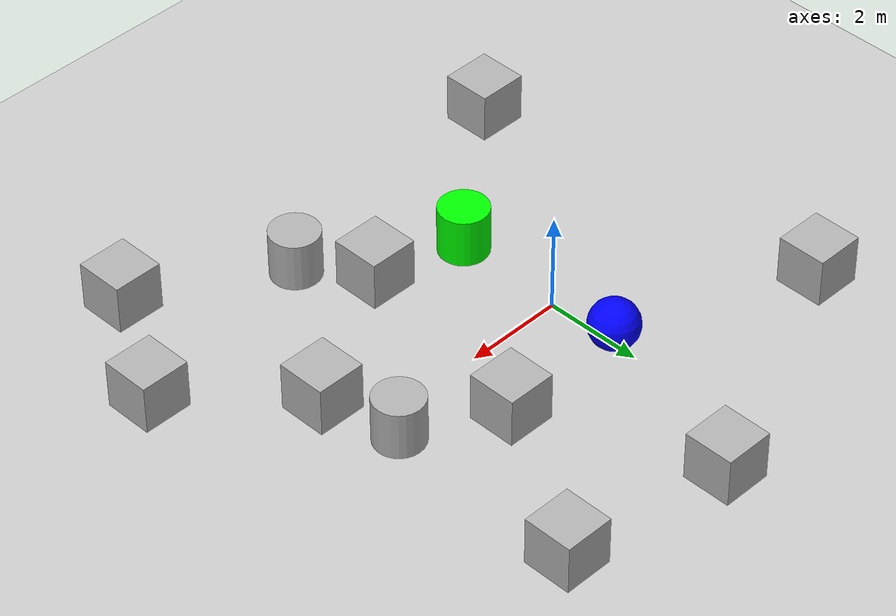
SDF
<sdf version='1.9'>
  <world name='shapes'>
    <scene>
      <ambient>1 1 1 1</ambient>
      <background>0.8 0.8 0.8 1</background>
      <shadows>true</shadows>
    </scene>
    <gravity>0 0 -9.8</gravity>
    <magnetic_field>6e-06 2.3e-05 -4.2e-05</magnetic_field>
    <atmosphere type='adiabatic'/>
    <physics type='ode'>
      <max_step_size>0.001</max_step_size>
      <real_time_factor>1</real_time_factor>
      <real_time_update_rate>1000</real_time_update_rate>
    </physics>
    <model name='ground_plane'>
      <static>true</static>
      <link name='link'>
        <collision name='collision'>
          <geometry>
            <plane>
              <normal>0 0 1</normal>
              <size>100 100</size>
            </plane>
          </geometry>
          <surface>
            <friction>
              <ode/>
            </friction>
            <bounce/>
            <contact/>
          </surface>
        </collision>
        <visual name='visual'>
          <geometry>
            <plane>
              <normal>0 0 1</normal>
              <size>100 100</size>
            </plane>
          </geometry>
          <material>
            <ambient>0.8 0.8 0.8 1</ambient>
            <diffuse>0.8 0.8 0.8 1</diffuse>
            <specular>0.8 0.8 0.8 1</specular>
          </material>
        </visual>
        <pose>0 0 0 0 -0 0</pose>
        <inertial>
          <pose>0 0 0 0 -0 0</pose>
          <mass>1</mass>
          <inertia>
            <ixx>1</ixx>
            <ixy>0</ixy>
            <ixz>0</ixz>
            <iyy>1</iyy>
            <iyz>0</iyz>
            <izz>1</izz>
          </inertia>
        </inertial>
        <enable_wind>false</enable_wind>
      </link>
      <pose>0 0 0 0 -0 0</pose>
      <self_collide>false</self_collide>
    </model>
    <model name='cylinder'>
      <pose>0 -2.24848 0.5 0 -0 0</pose>
      <link name='cylinder_link'>
        <inertial>
          <inertia>
            <ixx>0.14580000000000001</ixx>
            <ixy>0</ixy>
            <ixz>0</ixz>
            <iyy>0.14580000000000001</iyy>
            <iyz>0</iyz>
            <izz>0.125</izz>
          </inertia>
          <mass>1</mass>
          <pose>0 0 0 0 -0 0</pose>
        </inertial>
        <collision name='cylinder_collision'>
          <geometry>
            <cylinder>
              <radius>0.5</radius>
              <length>1</length>
            </cylinder>
          </geometry>
          <surface>
            <friction>
              <ode/>
            </friction>
            <bounce/>
            <contact/>
          </surface>
        </collision>
        <visual name='cylinder_visual'>
          <geometry>
            <cylinder>
              <radius>0.5</radius>
              <length>1</length>
            </cylinder>
          </geometry>
          <material>
            <ambient>0 1 0 1</ambient>
            <diffuse>0 1 0 1</diffuse>
            <specular>0 1 0 1</specular>
          </material>
        </visual>
        <pose>0 0 0 0 -0 0</pose>
        <enable_wind>false</enable_wind>
      </link>
      <static>false</static>
      <self_collide>false</self_collide>
    </model>
    <model name='sphere'>
      <pose>0 1.5 0.5 0 -0 0</pose>
      <link name='sphere_link'>
        <inertial>
          <inertia>
            <ixx>0.10000000000000001</ixx>
            <ixy>0</ixy>
            <ixz>0</ixz>
            <iyy>0.10000000000000001</iyy>
            <iyz>0</iyz>
            <izz>0.10000000000000001</izz>
          </inertia>
          <mass>1</mass>
          <pose>0 0 0 0 -0 0</pose>
        </inertial>
        <collision name='sphere_collision'>
          <geometry>
            <sphere>
              <radius>0.5</radius>
            </sphere>
          </geometry>
          <surface>
            <friction>
              <ode/>
            </friction>
            <bounce/>
            <contact/>
          </surface>
        </collision>
        <visual name='sphere_visual'>
          <geometry>
            <sphere>
              <radius>0.5</radius>
            </sphere>
          </geometry>
          <material>
            <ambient>0 0 1 1</ambient>
            <diffuse>0 0 1 1</diffuse>
            <specular>0 0 1 1</specular>
          </material>
        </visual>
        <pose>0 0 0 0 -0 0</pose>
        <enable_wind>false</enable_wind>
      </link>
      <static>false</static>
      <self_collide>false</self_collide>
    </model>
    <model name='box'>
      <pose>2.62758 1.50844 0.5 0 -0 0</pose>
      <link name='box_link'>
        <inertial>
          <inertia>
            <ixx>0.16666</ixx>
            <ixy>0</ixy>
            <ixz>0</ixz>
            <iyy>0.16666</iyy>
            <iyz>0</iyz>
            <izz>0.16666</izz>
          </inertia>
          <mass>1</mass>
          <pose>0 0 0 0 -0 0</pose>
        </inertial>
        <collision name='box_collision'>
          <geometry>
            <box>
              <size>1 1 1</size>
            </box>
          </geometry>
          <surface>
            <friction>
              <ode/>
            </friction>
            <bounce/>
            <contact/>
          </surface>
        </collision>
        <visual name='box_visual'>
          <geometry>
            <box>
              <size>1 1 1</size>
            </box>
          </geometry>
          <material>
            <ambient>0.3 0.3 0.3 1</ambient>
            <diffuse>0.7 0.7 0.7 1</diffuse>
            <specular>1 1 1 1</specular>
          </material>
        </visual>
        <pose>0 0 0 0 -0 0</pose>
        <enable_wind>false</enable_wind>
      </link>
      <static>false</static>
      <self_collide>false</self_collide>
    </model>
    <model name='box_0'>
      <pose>4.73724 -1.0037 0.5 0 -0 0</pose>
      <link name='box_link'>
        <inertial>
          <inertia>
            <ixx>0.16666</ixx>
            <ixy>0</ixy>
            <ixz>0</ixz>
            <iyy>0.16666</iyy>
            <iyz>0</iyz>
            <izz>0.16666</izz>
          </inertia>
          <mass>1</mass>
          <pose>0 0 0 0 -0 0</pose>
        </inertial>
        <collision name='box_collision'>
          <geometry>
            <box>
              <size>1 1 1</size>
            </box>
          </geometry>
          <surface>
            <friction>
              <ode/>
            </friction>
            <bounce/>
            <contact/>
          </surface>
        </collision>
        <visual name='box_visual'>
          <geometry>
            <box>
              <size>1 1 1</size>
            </box>
          </geometry>
          <material>
            <ambient>0.3 0.3 0.3 1</ambient>
            <diffuse>0.7 0.7 0.7 1</diffuse>
            <specular>1 1 1 1</specular>
          </material>
        </visual>
        <pose>0 0 0 0 -0 0</pose>
        <enable_wind>false</enable_wind>
      </link>
      <static>false</static>
      <self_collide>false</self_collide>
    </model>
    <model name='cylinder_0'>
      <pose>4.35777 0.514249 0.5 0 -0 0</pose>
      <link name='cylinder_link'>
        <inertial>
          <inertia>
            <ixx>0.14580000000000001</ixx>
            <ixy>0</ixy>
            <ixz>0</ixz>
            <iyy>0.14580000000000001</iyy>
            <iyz>0</iyz>
            <izz>0.125</izz>
          </inertia>
          <mass>1</mass>
          <pose>0 0 0 0 -0 0</pose>
        </inertial>
        <collision name='cylinder_collision'>
          <geometry>
            <cylinder>
              <radius>0.5</radius>
              <length>1</length>
            </cylinder>
          </geometry>
          <surface>
            <friction>
              <ode/>
            </friction>
            <bounce/>
            <contact/>
          </surface>
        </collision>
        <visual name='cylinder_visual'>
          <geometry>
            <cylinder>
              <radius>0.5</radius>
              <length>1</length>
            </cylinder>
          </geometry>
          <material>
            <ambient>0.3 0.3 0.3 1</ambient>
            <diffuse>0.7 0.7 0.7 1</diffuse>
            <specular>1 1 1 1</specular>
          </material>
        </visual>
        <pose>0 0 0 0 -0 0</pose>
        <enable_wind>false</enable_wind>
      </link>
      <static>false</static>
      <self_collide>false</self_collide>
    </model>
    <model name='cylinder_1'>
      <pose>2.61714 -3.95188 0.5 0 -0 0</pose>
      <link name='cylinder_link'>
        <inertial>
          <inertia>
            <ixx>0.14580000000000001</ixx>
            <ixy>0</ixy>
            <ixz>0</ixz>
            <iyy>0.14580000000000001</iyy>
            <iyz>0</iyz>
            <izz>0.125</izz>
          </inertia>
          <mass>1</mass>
          <pose>0 0 0 0 -0 0</pose>
        </inertial>
        <collision name='cylinder_collision'>
          <geometry>
            <cylinder>
              <radius>0.5</radius>
              <length>1</length>
            </cylinder>
          </geometry>
          <surface>
            <friction>
              <ode/>
            </friction>
            <bounce/>
            <contact/>
          </surface>
        </collision>
        <visual name='cylinder_visual'>
          <geometry>
            <cylinder>
              <radius>0.5</radius>
              <length>1</length>
            </cylinder>
          </geometry>
          <material>
            <ambient>0.3 0.3 0.3 1</ambient>
            <diffuse>0.7 0.7 0.7 1</diffuse>
            <specular>1 1 1 1</specular>
          </material>
        </visual>
        <pose>0 0 0 0 -0 0</pose>
        <enable_wind>false</enable_wind>
      </link>
      <static>false</static>
      <self_collide>false</self_collide>
    </model>
    <model name='box_1'>
      <pose>1.81136 -2.70672 0.5 0 -0 0</pose>
      <link name='box_link'>
        <inertial>
          <inertia>
            <ixx>0.16666</ixx>
            <ixy>0</ixy>
            <ixz>0</ixz>
            <iyy>0.16666</iyy>
            <iyz>0</iyz>
            <izz>0.16666</izz>
          </inertia>
          <mass>1</mass>
          <pose>0 0 0 0 -0 0</pose>
        </inertial>
        <collision name='box_collision'>
          <geometry>
            <box>
              <size>1 1 1</size>
            </box>
          </geometry>
          <surface>
            <friction>
              <ode/>
            </friction>
            <bounce/>
            <contact/>
          </surface>
        </collision>
        <visual name='box_visual'>
          <geometry>
            <box>
              <size>1 1 1</size>
            </box>
          </geometry>
          <material>
            <ambient>0.3 0.3 0.3 1</ambient>
            <diffuse>0.7 0.7 0.7 1</diffuse>
            <specular>1 1 1 1</specular>
          </material>
        </visual>
        <pose>0 0 0 0 -0 0</pose>
        <enable_wind>false</enable_wind>
      </link>
      <static>false</static>
      <self_collide>false</self_collide>
    </model>
    <model name='box_2'>
      <pose>1.11329 5.10914 0.5 0 -0 0</pose>
      <link name='box_link'>
        <inertial>
          <inertia>
            <ixx>0.16666</ixx>
            <ixy>0</ixy>
            <ixz>0</ixz>
            <iyy>0.16666</iyy>
            <iyz>0</iyz>
            <izz>0.16666</izz>
          </inertia>
          <mass>1</mass>
          <pose>0 0 0 0 -0 0</pose>
        </inertial>
        <collision name='box_collision'>
          <geometry>
            <box>
              <size>1 1 1</size>
            </box>
          </geometry>
          <surface>
            <friction>
              <ode/>
            </friction>
            <bounce/>
            <contact/>
          </surface>
        </collision>
        <visual name='box_visual'>
          <geometry>
            <box>
              <size>1 1 1</size>
            </box>
          </geometry>
          <material>
            <ambient>0.3 0.3 0.3 1</ambient>
            <diffuse>0.7 0.7 0.7 1</diffuse>
            <specular>1 1 1 1</specular>
          </material>
        </visual>
        <pose>0 0 0 0 -0 0</pose>
        <enable_wind>false</enable_wind>
      </link>
      <static>false</static>
      <self_collide>false</self_collide>
    </model>
    <model name='box_3'>
      <pose>4.46768 4.58261 0.5 0 -0 0</pose>
      <link name='box_link'>
        <inertial>
          <inertia>
            <ixx>0.16666</ixx>
            <ixy>0</ixy>
            <ixz>0</ixz>
            <iyy>0.16666</iyy>
            <iyz>0</iyz>
            <izz>0.16666</izz>
          </inertia>
          <mass>1</mass>
          <pose>0 0 0 0 -0 0</pose>
        </inertial>
        <collision name='box_collision'>
          <geometry>
            <box>
              <size>1 1 1</size>
            </box>
          </geometry>
          <surface>
            <friction>
              <ode/>
            </friction>
            <bounce/>
            <contact/>
          </surface>
        </collision>
        <visual name='box_visual'>
          <geometry>
            <box>
              <size>1 1 1</size>
            </box>
          </geometry>
          <material>
            <ambient>0.3 0.3 0.3 1</ambient>
            <diffuse>0.7 0.7 0.7 1</diffuse>
            <specular>1 1 1 1</specular>
          </material>
        </visual>
        <pose>0 0 0 0 -0 0</pose>
        <enable_wind>false</enable_wind>
      </link>
      <static>false</static>
      <self_collide>false</self_collide>
    </model>
    <model name='box_4'>
      <pose>-3.03976 -4.70703 0.5 0 -0 0</pose>
      <link name='box_link'>
        <inertial>
          <inertia>
            <ixx>0.16666</ixx>
            <ixy>0</ixy>
            <ixz>0</ixz>
            <iyy>0.16666</iyy>
            <iyz>0</iyz>
            <izz>0.16666</izz>
          </inertia>
          <mass>1</mass>
          <pose>0 0 0 0 -0 0</pose>
        </inertial>
        <collision name='box_collision'>
          <geometry>
            <box>
              <size>1 1 1</size>
            </box>
          </geometry>
          <surface>
            <friction>
              <ode/>
            </friction>
            <bounce/>
            <contact/>
          </surface>
        </collision>
        <visual name='box_visual'>
          <geometry>
            <box>
              <size>1 1 1</size>
            </box>
          </geometry>
          <material>
            <ambient>0.3 0.3 0.3 1</ambient>
            <diffuse>0.7 0.7 0.7 1</diffuse>
            <specular>1 1 1 1</specular>
          </material>
        </visual>
        <pose>0 0 0 0 -0 0</pose>
        <enable_wind>false</enable_wind>
      </link>
      <static>false</static>
      <self_collide>false</self_collide>
    </model>
    <model name='box_5'>
      <pose>-3.8721 2.9175 0.5 0 -0 0</pose>
      <link name='box_link'>
        <inertial>
          <inertia>
            <ixx>0.16666</ixx>
            <ixy>0</ixy>
            <ixz>0</ixz>
            <iyy>0.16666</iyy>
            <iyz>0</iyz>
            <izz>0.16666</izz>
          </inertia>
          <mass>1</mass>
          <pose>0 0 0 0 -0 0</pose>
        </inertial>
        <collision name='box_collision'>
          <geometry>
            <box>
              <size>1 1 1</size>
            </box>
          </geometry>
          <surface>
            <friction>
              <ode/>
            </friction>
            <bounce/>
            <contact/>
          </surface>
        </collision>
        <visual name='box_visual'>
          <geometry>
            <box>
              <size>1 1 1</size>
            </box>
          </geometry>
          <material>
            <ambient>0.3 0.3 0.3 1</ambient>
            <diffuse>0.7 0.7 0.7 1</diffuse>
            <specular>1 1 1 1</specular>
          </material>
        </visual>
        <pose>0 0 0 0 -0 0</pose>
        <enable_wind>false</enable_wind>
      </link>
      <static>false</static>
      <self_collide>false</self_collide>
    </model>
    <model name='box_6'>
      <pose>6.81597 -3.1904 0.5 0 -0 0</pose>
      <link name='box_link'>
        <inertial>
          <inertia>
            <ixx>0.16666</ixx>
            <ixy>0</ixy>
            <ixz>0</ixz>
            <iyy>0.16666</iyy>
            <iyz>0</iyz>
            <izz>0.16666</izz>
          </inertia>
          <mass>1</mass>
          <pose>0 0 0 0 -0 0</pose>
        </inertial>
        <collision name='box_collision'>
          <geometry>
            <box>
              <size>1 1 1</size>
            </box>
          </geometry>
          <surface>
            <friction>
              <ode/>
            </friction>
            <bounce/>
            <contact/>
          </surface>
        </collision>
        <visual name='box_visual'>
          <geometry>
            <box>
              <size>1 1 1</size>
            </box>
          </geometry>
          <material>
            <ambient>0.3 0.3 0.3 1</ambient>
            <diffuse>0.7 0.7 0.7 1</diffuse>
            <specular>1 1 1 1</specular>
          </material>
        </visual>
        <pose>0 0 0 0 -0 0</pose>
        <enable_wind>false</enable_wind>
      </link>
      <static>false</static>
      <self_collide>false</self_collide>
    </model>
    <model name='box_7'>
      <pose>5.44418 -5.4808 0.5 0 -0 0</pose>
      <link name='box_link'>
        <inertial>
          <inertia>
            <ixx>0.16666</ixx>
            <ixy>0</ixy>
            <ixz>0</ixz>
            <iyy>0.16666</iyy>
            <iyz>0</iyz>
            <izz>0.16666</izz>
          </inertia>
          <mass>1</mass>
          <pose>0 0 0 0 -0 0</pose>
        </inertial>
        <collision name='box_collision'>
          <geometry>
            <box>
              <size>1 1 1</size>
            </box>
          </geometry>
          <surface>
            <friction>
              <ode/>
            </friction>
            <bounce/>
            <contact/>
          </surface>
        </collision>
        <visual name='box_visual'>
          <geometry>
            <box>
              <size>1 1 1</size>
            </box>
          </geometry>
          <material>
            <ambient>0.3 0.3 0.3 1</ambient>
            <diffuse>0.7 0.7 0.7 1</diffuse>
            <specular>1 1 1 1</specular>
          </material>
        </visual>
        <pose>0 0 0 0 -0 0</pose>
        <enable_wind>false</enable_wind>
      </link>
      <static>false</static>
      <self_collide>false</self_collide>
    </model>

    <light name='sun' type='directional'>
      <pose>0 0 10 0 -0 0</pose>
      <cast_shadows>true</cast_shadows>
      <intensity>1</intensity>
      <direction>-0.5 0.1 -0.9</direction>
      <diffuse>0.8 0.8 0.8 1</diffuse>
      <specular>0.2 0.2 0.2 1</specular>
      <attenuation>
        <range>1000</range>
        <linear>0.01</linear>
        <constant>0.90000000000000002</constant>
        <quadratic>0.001</quadratic>
      </attenuation>
      <spot>
        <inner_angle>0</inner_angle>
        <outer_angle>0</outer_angle>
        <falloff>0</falloff>
      </spot>
    </light>
  </world>
</sdf>
